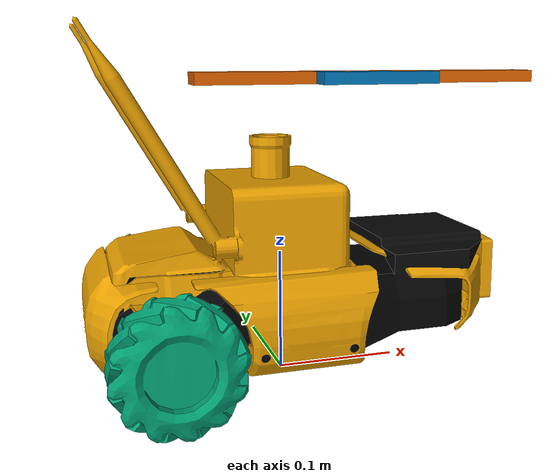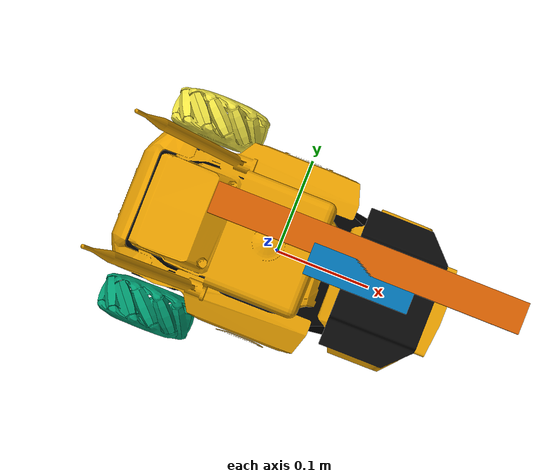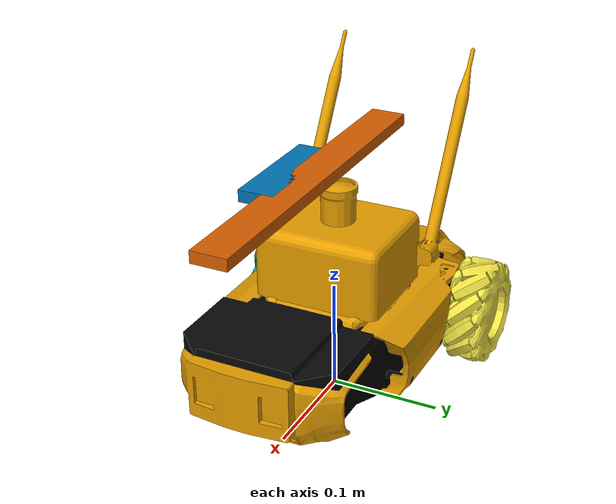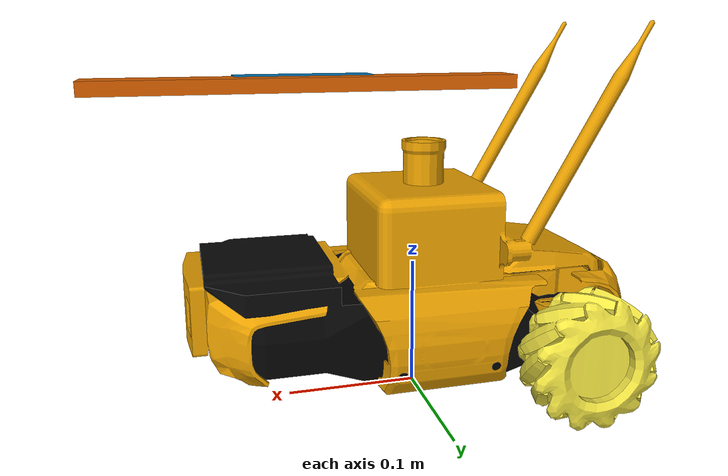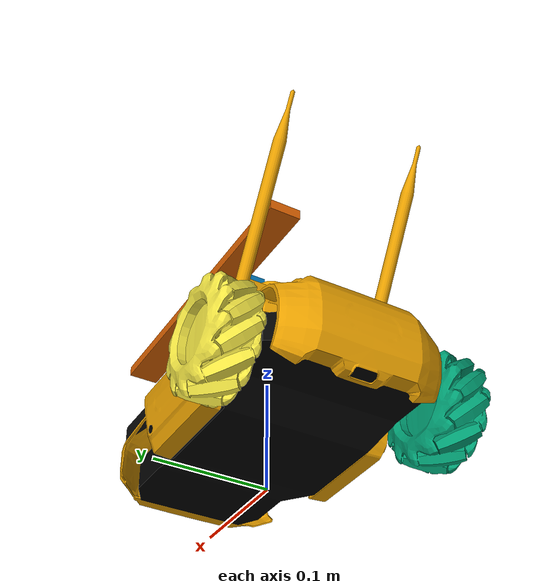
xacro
<?xml version="1.0"?>
<robot name="robomaster" xmlns:xacro="http://www.ros.org/wiki/xacro">

  <!-- Inclube Functions for the wheels  and Calcuations-->

  <xacro:include filename="$(find ros_robomaster_description)/urdf/functions/interias.xacro" />

  <!-- Colors -->
  <material name="Black">
    <color rgba="0.0 0.0 0.0 1.0" />
  </material>

  <material name="Red">
    <color rgba="0.8 0.0 0.0 1.0" />
  </material>

  <material name="White">
    <color rgba="1.0 1.0 1.0 1.0" />
  </material>

  <material name="Blue">
    <color rgba="0.0 0.0 0.8 1.0" />
  </material>
  <!-- Colors -->

  <!--All
  units in m-kg-s-radians unit system -->
  <xacro:property name="M_PI" value="3.1415926535897931" />
  <xacro:property name="M_PI_2" value="1.570796327" />
  <xacro:property name="M_PI_4" value="0.78539816339" />
  <xacro:property name="DEG_TO_RAD" value="0.017453293" />

  <!-- position of the base_footprint and base_link -->
  <xacro:property name="base_footprint_position_x" value="0.0" /> <!-- in m -->
  <xacro:property name="base_footprint_position_y" value="0.0" /> <!-- in m -->
  <xacro:property name="base_footprint_position_z" value="0.0" /> <!-- in m -->
  <xacro:property name="base_footprint_orientation_r" value="0.0" /> <!-- in rad -->
  <xacro:property name="base_footprint_orientation_p" value="0.0" /> <!-- in rad -->
  <xacro:property name="base_footprint_orientation_y" value="0.0" /> <!-- in rad -->  <!-- Rotation around z Axis   -->
  <xacro:property name="base_link_footprint_z_offset" value="0.106624" /> <!-- in m, offset of base link to footprint in z direction -->

  <!-- position of the front left mecanum wheel relative to baselink -->
  <xacro:property name="wheel_fl_position_x" value="0.1" /> <!-- in m   -->
  <xacro:property name="wheel_fl_position_y" value="0.1" /> <!-- in m   -->
  <xacro:property name="wheel_fl_position_z" value="-0.056624" /> <!-- in m   -->
  <xacro:property name="wheel_fl_orientation_r" value="0" /> <!-- in rad   -->
  <xacro:property name="wheel_fl_orientation_p" value="0" /> <!-- in rad  -->
  <xacro:property name="wheel_fl_orientation_y" value="0" /> <!-- in rad   -->  <!-- Rotation around z Axis   -->

  <!-- position of the front right mecanum wheel relative to baselink -->
  <xacro:property name="wheel_fr_position_x" value="0.1" /> <!-- in m   -->
  <xacro:property name="wheel_fr_position_y" value="-0.1" /> <!-- in m   -->
  <xacro:property name="wheel_fr_position_z" value="-0.056624" /> <!-- in m   -->
  <xacro:property name="wheel_fr_orientation_r" value="0" /> <!-- in rad   -->
  <xacro:property name="wheel_fr_orientation_p" value="0" /> <!-- in rad  -->
  <xacro:property name="wheel_fr_orientation_y" value="0" /> <!-- in rad   -->  <!-- Rotation around z Axis   -->

  <!-- position of the rear right mecanum wheel relative to baselink -->
  <xacro:property name="wheel_rr_position_x" value="-0.1" /> <!-- in m   -->
  <xacro:property name="wheel_rr_position_y" value="-0.1" /> <!-- in m   -->
  <xacro:property name="wheel_rr_position_z" value="-0.056624" /> <!-- in m   -->
  <xacro:property name="wheel_rr_orientation_r" value="0" /> <!-- in rad   -->
  <xacro:property name="wheel_rr_orientation_p" value="0" /> <!-- in rad  -->
  <xacro:property name="wheel_rr_orientation_y" value="0" /> <!-- in rad   -->  <!-- Rotation around z Axis   -->

  <!-- position of the rear left mecanum wheel relative to baselink -->
  <xacro:property name="wheel_rl_position_x" value="-0.1" /> <!-- in m   -->
  <xacro:property name="wheel_rl_position_y" value="0.1" /> <!-- in m   -->
  <xacro:property name="wheel_rl_position_z" value="-0.056624" /> <!-- in m   -->
  <xacro:property name="wheel_rl_orientation_r" value="0" /> <!-- in rad   -->
  <xacro:property name="wheel_rl_orientation_p" value="0" /> <!-- in rad  -->
  <xacro:property name="wheel_rl_orientation_y" value="0.0" /> <!-- in rad   -->  <!-- Rotation around z Axis   -->

  <!-- position of the wave sensor relative to baselink,  -->
  <xacro:property name="wave_position_x" value="0.0832" /> <!-- in m   -->
  <xacro:property name="wave_position_y" value="0.0" /> <!-- in m   -->
  <xacro:property name="wave_position_z" value="0.1346" /> <!-- in m   -->
  <xacro:property name="wave_orientation_r" value="0" /> <!-- in rad   -->
  <xacro:property name="wave_orientation_p" value="0" /> <!-- in rad  -->
  <xacro:property name="wave_orientation_y" value="0" /> <!-- in rad   -->  <!-- Rotation around z Axis   -->

  <!-- Dimensions of the parts -->

  <!-- Dimension mecanum_wheel for collision box -->
  <xacro:property name="mecanum_wheel_radius" value="0.05" /> <!-- in m   -->
  <xacro:property name="mecanum_wheel_height" value="0.045" /> <!-- in m   -->

  <!-- wave sensor -->
  <xacro:property name="WAVE_sensor_dimension_x" value="0.10" />
  <xacro:property name="WAVE_sensor_dimension_y" value="0.03" />
  <xacro:property name="WAVE_sensor_dimension_z" value="0.01" />

  <!-- position of the Camera relative to baselink,  -->
  <xacro:property name="camera_position_x" value="0.0832" /> <!-- in m   -->
  <xacro:property name="camera_position_y" value="0.02" /> <!-- in m   -->
  <xacro:property name="camera_position_z" value="0.1346" /> <!-- in m   -->
  <xacro:property name="camera_orientation_r" value="0" /> <!-- in rad   -->
  <xacro:property name="camera_orientation_p" value="0" /> <!-- in rad  -->
  <xacro:property name="camera_orientation_y" value="0" /> <!-- in rad   -->  <!-- Rotation around z Axis   -->
  <!-- Camera -->
  <xacro:property name="CAMERA_dimension_x" value="0.30" />
  <xacro:property name="CAMERA_dimension_y" value="0.03" />
  <xacro:property name="CAMERA_dimension_z" value="0.01" />

  <!-- Include Robomaster parts -->
  <xacro:include filename="$(find ros_robomaster_description)/urdf/parts/parts.xacro" />

</robot>

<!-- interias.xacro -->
<robot xmlns:xacro="http://www.ros.org/wiki/xacro">

<!-- Macros for calculating the interias look Wikipedia -->
<xacro:macro name="cylinder_inertia" params="m r h">
    	<inertia  ixx="${m*(3*r*r+h*h)/12}" ixy = "0" ixz = "0"
        	  iyy="${m*(3*r*r+h*h)/12}" iyz = "0"
                  izz="${m*r*r/2}" />
</xacro:macro>

<xacro:macro name="box_inertia" params="m x y z">
        <inertia  ixx="${m*(y*y+z*z)/12}" ixy = "0" ixz = "0"
                  iyy="${m*(x*x+z*z)/12}" iyz = "0"
                  izz="${m*(x*x+z*z)/12}" />
</xacro:macro>

<xacro:macro name="sphere_inertia" params="m r">
        <inertia  ixx="${2*m*r*r/5}" ixy = "0" ixz = "0"
                  iyy="${2*m*r*r/5}" iyz = "0"
                  izz="${2*m*r*r/5}" />
</xacro:macro>

<xacro:macro name="default_inertial" params="mass">
        <inertial>
                <mass value="${mass}" />
                <inertia ixx="1.0" ixy="0.0" ixz="0.0"
                     iyy="1.0" iyz="0.0"
                     izz="1.0" />
        </inertial>
</xacro:macro>

</robot>

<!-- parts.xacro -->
<robot name="robomaster" xmlns:xacro="http://www.ros.org/wiki/xacro">

  <xacro:include filename="$(find ros_robomaster_description)/urdf/functions/interias.xacro" />

  <!-- Basefootprint is the Center of the Robot projected onto ground-->
  <link name="base_footprint">
    <gravity>false</gravity>
    <inertial>
      <mass value="0.1" />
      <origin xyz="0 0 0" />
      <inertia ixx="0.0001" ixy="0.0" ixz="0.0"
        iyy="0.0001" iyz="0.0"
        izz="0.0001" />
    </inertial>
    <visual>
      <geometry>
        <mesh filename="file://$(find ros_robomaster_description)/urdf/meshes/base/Base.dae"
          scale="1 1 1 " />
      </geometry>
    </visual>
    <collision>
      <origin xyz="${base_footprint_position_x} ${base_footprint_position_y} ${base_footprint_position_z}"
        rpy="${base_footprint_orientation_r} ${base_footprint_orientation_p} ${base_footprint_orientation_y}" />
      <geometry>
        <box size="0.2 0.2 0.01" /> <!--ToDo check collision box size -->
      </geometry>
    </collision>
  </link>

  <link name="base_link">
    <!-- Defaul Interia of 1kg-->
    <xacro:default_inertial mass="1" />
  </link>
  <joint name="base_link_joint" type="fixed">
    <parent link="base_footprint" />
    <child link="base_link" />
    <origin xyz="${base_footprint_position_x} ${base_footprint_position_y} ${base_footprint_position_z + base_link_footprint_z_offset}"
      rpy="${base_footprint_orientation_r} ${base_footprint_orientation_p} ${base_footprint_orientation_y}" />
  </joint>
  <gazebo reference="base_footprint">
    <turnGravityoff>false</turnGravityoff>
  </gazebo>

  <link name="wheel_rr_link">
    <!-- Defaul Interia of 200g-->
    <xacro:default_inertial mass="0.200" />
    <collision>
      <geometry>
        <cylinder length="${mecanum_wheel_height}" radius="${mecanum_wheel_radius}" />
      </geometry>
      <origin rpy="${M_PI_2} 0 0" xyz="0 0 0" />
    </collision>
    <visual>
      <geometry>
        <mesh
          filename="file://$(find ros_robomaster_description)/urdf/meshes/wheels/Mecanum_Wheel.dae"
          scale="1 1 1 " />
      </geometry>
    </visual>
  </link>
  <joint name="wheel_rr_joint" type="continuous">
    <parent link="base_link" />
    <child link="wheel_rr_link" />
    <axis xyz="0 1 0" />
    <origin xyz="${wheel_rr_position_x} ${wheel_rr_position_y} ${wheel_rr_position_z}"
      rpy="${wheel_rr_orientation_r} ${wheel_rr_orientation_p} ${wheel_rr_orientation_y}" />
  </joint>

  <link name="wheel_rl_link">
    <!-- Defaul Interia of 200g-->
    <xacro:default_inertial mass="0.200" />
    <collision>
      <geometry>
        <cylinder length="${mecanum_wheel_height}" radius="${mecanum_wheel_radius}" />
      </geometry>
      <origin rpy="${M_PI_2} 0 0" xyz="0 0 0" />
    </collision>
    <visual>
      <geometry>
        <mesh
          filename="file://$(find ros_robomaster_description)/urdf/meshes/wheels/Mecanum_Wheel.dae"
          scale="1 1 1 " />
      </geometry>
    </visual>
  </link>
  <joint name="wheel_rl_joint" type="continuous">
    <parent link="base_link" />
    <child link="wheel_rl_link" />
    <axis xyz="0 1 0" />
    <origin xyz="${wheel_rl_position_x} ${wheel_rl_position_y} ${wheel_rl_position_z}"
      rpy="${wheel_rl_orientation_r} ${wheel_rl_orientation_p} ${wheel_rl_orientation_y}" />
  </joint>

<!-- Wave sensor -->
  <link name="wave_sensor_link">
    <visual>
      <geometry>
        <box
          size="${WAVE_sensor_dimension_x} ${WAVE_sensor_dimension_y} ${WAVE_sensor_dimension_z}" />
      </geometry>
    </visual>
  </link>
  <joint name="wave_sensor_joint" type="fixed">
    <parent link="base_link" />
    <child link="wave_sensor_link" />
    <origin xyz="${wave_position_x} ${wave_position_y} ${wave_position_z}"
      rpy="${wave_orientation_r} ${wave_orientation_p} ${wave_orientation_y}" />
  </joint>

  <!-- Camera  -->
  <link name="camera_link">
    <visual>
      <geometry>
        <box
          size="${CAMERA_dimension_x} ${CAMERA_dimension_y} ${CAMERA_dimension_z}" />
      </geometry>
    </visual>
  </link>
  <joint name="camera_joint" type="fixed">
    <parent link="base_link" />
    <child link="camera_link" />
    <origin xyz="${camera_position_x} ${camera_position_y} ${camera_position_z}"
      rpy="${camera_orientation_r} ${camera_orientation_p} ${camera_orientation_y}" />
  </joint>

</robot>
